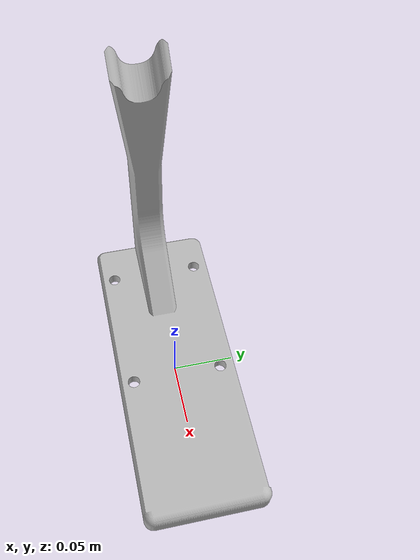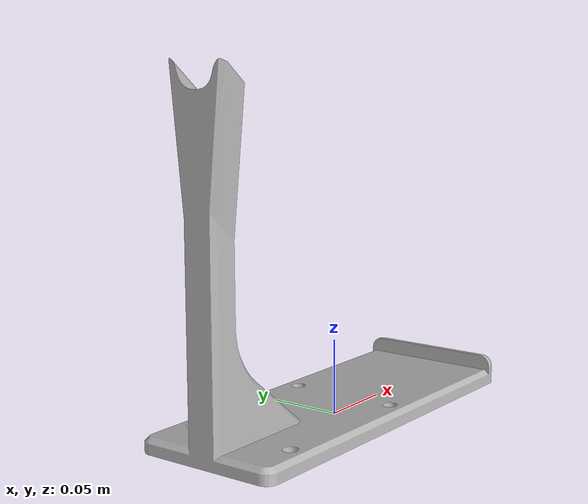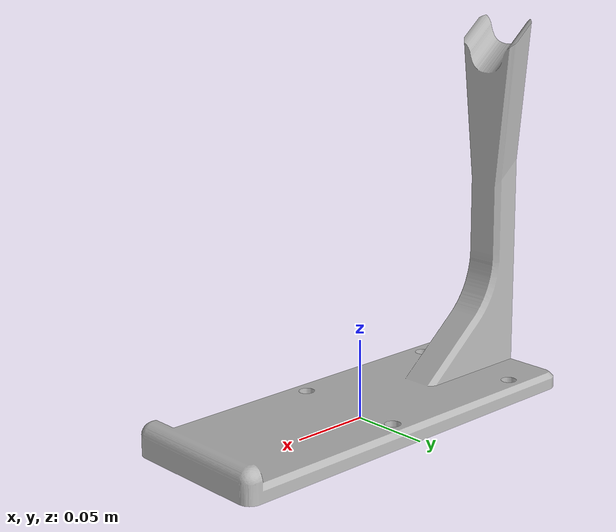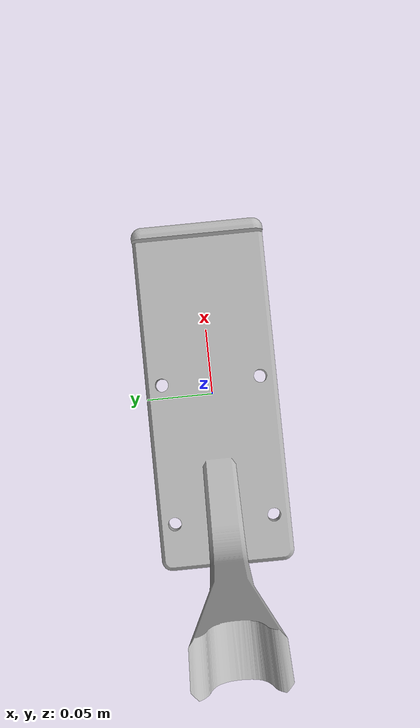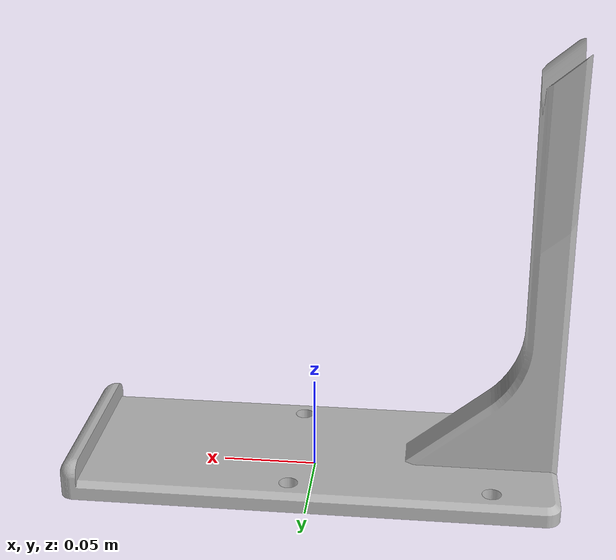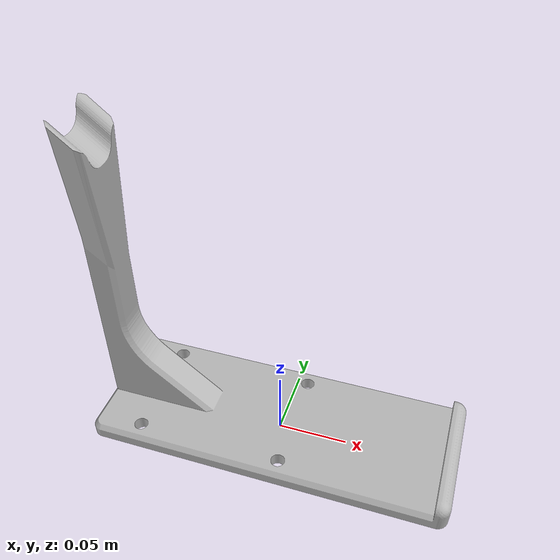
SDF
<?xml version="1.0" ?>
<sdf version="1.6" xmlns:drake="drake.mit.edu">
  <model name="spatula_holder">
    <link name="spatula_holder">
      <pose>0 0 0 0 0 0</pose>
      <inertial>
        <pose>0 0 0 0 0 0</pose>
        <mass>0.2</mass>
        <inertia>
          <ixx>0.002</ixx>
          <ixy>0.0</ixy>
          <ixz>0.0</ixz>
          <iyy>0.002</iyy>
          <iyz>0.0</iyz>
          <izz>0.002</izz>
        </inertia>
      </inertial>

      <visual name="spatula_holder_visual">
        <pose>0 0 0 0 0 0</pose>
        <geometry>
          <mesh>
            <uri>SpatulaHolder_Low_assm.obj</uri>
            <scale>1 1 1</scale>
          </mesh>
        </geometry>
        <material>
          <drake:diffuse_map>spatula_holder_yamazaki_white_issue8157_color.png</drake:diffuse_map>
        </material>
      </visual>

      <collision name="spatula_holder_base">
        <pose>0 0 0.005 0 0 0</pose>
        <geometry>
          <box>
            <size>0.26 0.1 0.01</size>
          </box>
        </geometry>
        <drake:proximity_properties>
          <drake:compliant_hydroelastic/>
          <drake:hydroelastic_modulus>1e7</drake:hydroelastic_modulus>
          <drake:mu_dynamic>0.2</drake:mu_dynamic>
          <drake:mu_static>0.2</drake:mu_static>
        </drake:proximity_properties>
      </collision>

      <collision name="spatula_holder_tip">
        <pose>0.125 0 0.015 0 0 0</pose>
        <geometry>
          <box>
            <size>0.01 0.1 0.01</size>
          </box>
        </geometry>
        <drake:proximity_properties>
          <drake:compliant_hydroelastic/>
          <drake:hydroelastic_modulus>1e7</drake:hydroelastic_modulus>
          <drake:mu_dynamic>0.2</drake:mu_dynamic>
          <drake:mu_static>0.2</drake:mu_static>
        </drake:proximity_properties>
      </collision>

      <collision name="spatula_holder_mast">
        <pose>-0.12 0 0.1055 0 0 0</pose>
        <geometry>
          <box>
            <size>0.02 0.028 0.191</size>
          </box>
        </geometry>
        <drake:proximity_properties>
          <drake:compliant_hydroelastic/>
          <drake:hydroelastic_modulus>1e7</drake:hydroelastic_modulus>
          <drake:mu_dynamic>0.2</drake:mu_dynamic>
          <drake:mu_static>0.2</drake:mu_static>
        </drake:proximity_properties>
      </collision>

    </link>

    <frame name="spatula_holder_origin">
      <pose relative_to="spatula_holder">0 0 0 0 0 0</pose>
    </frame>
    <frame name="spatula_holder_tip_upright">
      <pose relative_to="spatula_holder">0.12 0 0.01 0 0 0</pose>
    </frame>
    <frame name="spatula_holder_tip_align_mast">
      <pose relative_to="spatula_holder">0.12 0 0.01 0 1.094 0</pose>
    </frame>  <!-- aligned with mast tip-->
    <frame name="spatula_holder_tip_align_blade">
      <pose relative_to="spatula_holder">0.12 0 0.01 0 0.436 0</pose>
    </frame>  <!-- aligned with spatula blade, 25 deg-->

  </model>
</sdf>
